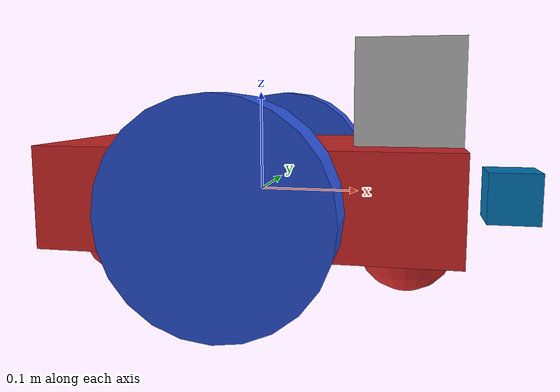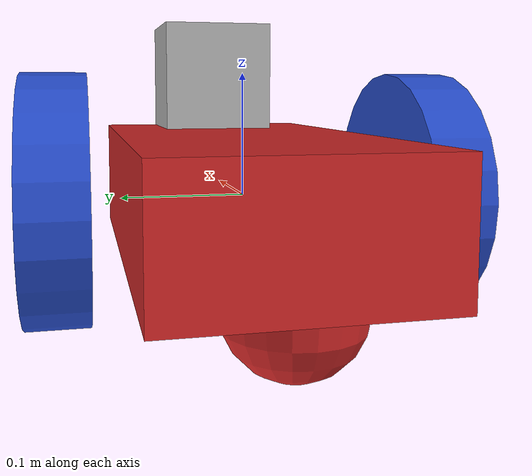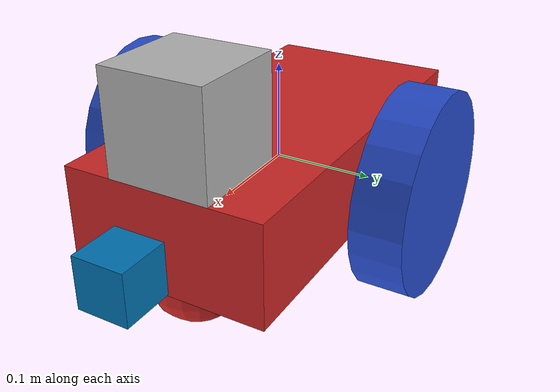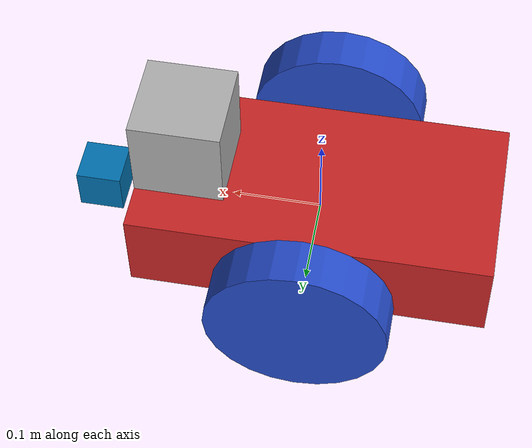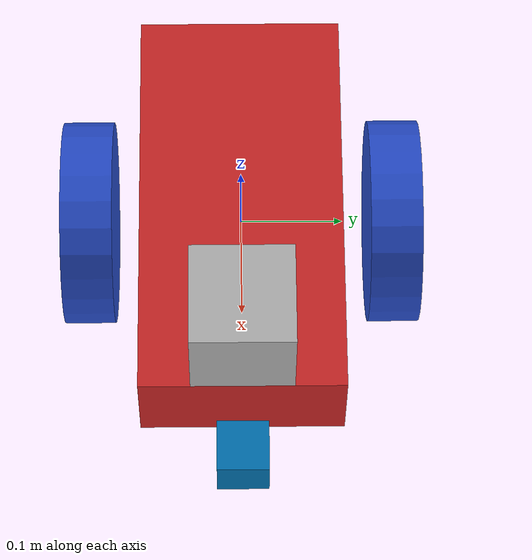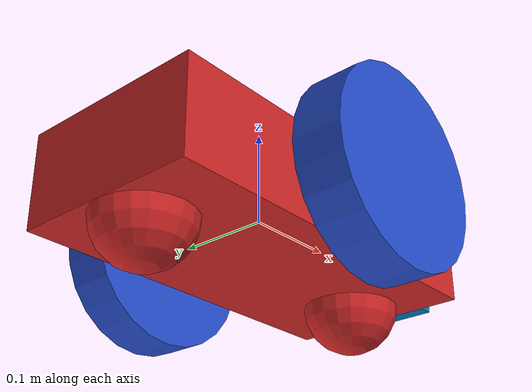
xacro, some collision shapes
<?xml version='1.0'?>

<robot name="my_robot" xmlns:xacro="http://www.ros.org/wiki/xacro">

  <link name="robot_footprint"></link>
  <xacro:include filename="$(find my_robot)/urdf/my_robot.gazebo" />

  <joint name="robot_footprint_joint" type="fixed">
    <origin xyz="0 0 0" rpy="0 0 0" />
    <parent link="robot_footprint"/>
    <child link="chassis" />
  </joint>

  <joint type="continuous" name="left_wheel_hinge">
    <origin xyz="0 0.15 0" rpy="0 0 0"/>
    <child link="left_wheel"/>
    <parent link="chassis"/>
    <axis xyz="0 1 0" rpy="0 0 0"/>
    <limit effort="10000" velocity="1000"/>
    <dynamics damping="1.0" friction="1.0"/>
  </joint>

  <joint type="continuous" name="right_wheel_hinge">
    <origin xyz="0 -0.15 0" rpy="0 0 0"/>
    <child link="right_wheel"/>
    <parent link="chassis"/>
    <axis xyz="0 1 0" rpy="0 0 0"/>
    <limit effort="10000" velocity="1000"/>
    <dynamics damping="1.0" friction="1.0"/>
  </joint>

  <joint type="fixed" name="camera_joint">
    <origin xyz="0.25 0 0" rpy="0 0 0"/>
    <child link="camera"/>
    <parent link="chassis"/>
    <axis xyz="0 1 0" rpy="0 0 0"/>
  </joint>

  <!-- joint camera-depth frame -->
  <joint name="camera_depth_joint" type="fixed">
    <origin xyz="0 0.0 0" rpy="0 0 0" />
    <parent link="camera" />
    <child link="depth_frame" />
  </joint>
  <!-- joint camera-optical frame -->
  <joint name="camera_optical_joint" type="fixed">
    <origin xyz="0 0.0 0" rpy="-1.570796 0 -1.570796" />
    <parent link="camera" />
    <child link="camera_rgb_optical_frame" />
  </joint>

  <joint type="fixed" name="hokuyo_joint">
    <origin xyz="0.15 0 0.1" rpy="0 0 0"/>
    <child link="hokuyo"/>
    <parent link="chassis"/>
    <axis xyz="0 1 0" rpy="0 0 0"/>
  </joint>

  <link name='chassis'>
    <pose>0 0 0.1 0 0 0</pose>

    <inertial>
      <mass value="15.0"/>
      <origin xyz="0.0 0 0" rpy=" 0 0 0"/>
      <inertia
          ixx="0.1" ixy="0" ixz="0"
          iyy="0.1" iyz="0"
          izz="0.1"
      />
    </inertial>

    <collision name='collision'>
      <origin xyz="0 0 0" rpy=" 0 0 0"/>
      <geometry>
        <box size=".4 .2 .1"/>
      </geometry>
    </collision>

    <visual name='chassis_visual'>
      <origin xyz="0 0 0" rpy=" 0 0 0"/>
      <geometry>
        <box size=".4 .2 .1"/>
        <material name="red"/>
      </geometry>
    </visual>

    <collision name='back_caster_collision'>
      <origin xyz="-0.15 0 -0.05" rpy=" 0 0 0"/>
      <geometry>
        <sphere radius="0.0499"/>
      </geometry>
    </collision>

    <visual name='back_caster_visual'>
      <origin xyz="-0.15 0 -0.05" rpy=" 0 0 0"/>
      <geometry>
        <sphere radius="0.05"/>
        <material name="black"/>
      </geometry>
    </visual>

    <collision name='front_caster_collision'>
      <origin xyz="0.15 0 -0.05" rpy=" 0 0 0"/>
      <geometry>
        <sphere radius="0.0499"/>
      </geometry>
    </collision>

    <visual name='front_caster_visual'>
      <origin xyz="0.15 0 -0.05" rpy=" 0 0 0"/>
      <geometry>
        <sphere radius="0.05"/>
        <material name="black"/>
      </geometry>
    </visual>

  </link>

  <gazebo reference="chassis">
    <material>Gazebo/Red</material>
  </gazebo>

  <link name='left_wheel'>
    <inertial>
      <mass value="5.0"/>
      <origin xyz="0 0 0" rpy=" 0 1.5707 1.5707"/>
      <inertia
          ixx="0.1" ixy="0" ixz="0"
          iyy="0.1" iyz="0"
          izz="0.1"
      />
    </inertial>
    <collision name='left_wheel_collision'>
      <origin xyz="0 0 0" rpy=" 0 1.5707 1.5707"/>
      <geometry>
        <cylinder radius="0.1" length="0.05"/>
      </geometry>
    </collision>
    <visual name='left_wheel_visual'>
      <origin xyz="0 0 0" rpy=" 0 1.5707 1.5707"/>
      <geometry>
        <cylinder radius="0.1" length="0.05"/>
        <material name="blue"/>
      </geometry>
    </visual>
  </link>

  <link name='right_wheel'>
    <inertial>
      <mass value="5.0"/>
      <origin xyz="0 0 0" rpy=" 0 1.5707 1.5707"/>
      <inertia
          ixx="0.1" ixy="0" ixz="0"
          iyy="0.1" iyz="0"
          izz="0.1"
      />
    </inertial>
    <collision name='right_wheel_collision'>
      <origin xyz="0 0 0" rpy=" 0 1.5707 1.5707"/>
      <geometry>
        <cylinder radius="0.1" length="0.05"/>
      </geometry>
    </collision>
    <visual name='right_wheel_visual'>
      <origin xyz="0 0 0" rpy=" 0 1.5707 1.5707"/>
      <geometry>
        <cylinder radius="0.1" length="0.05"/>
        <material name="blue"/>
      </geometry>
    </visual>
  </link>

  <gazebo reference="left_wheel">
    <material>Gazebo/Blue</material>
  </gazebo>
  <gazebo reference="right_wheel">
    <material>Gazebo/Blue</material>
  </gazebo>

  <link name='camera'>
    <pose>0 0 0 0 0 0</pose>
    <inertial>
      <mass value="0.1"/>
      <origin xyz="0.0 0 0" rpy=" 0 0 0"/>
      <inertia
          ixx="1e-6" ixy="0" ixz="0"
          iyy="1e-6" iyz="0"
          izz="1e-6"
      />
    </inertial>
    <collision name='camera_collision'>
      <origin xyz="0 0 0" rpy=" 0 0 0"/>
      <geometry>
        <box size=".05 .05 .05"/>
      </geometry>
    </collision>
    <visual name='camera_visual'>
      <origin xyz="0 0 0" rpy=" 0 0 0"/>
      <geometry>
        <box size=".05 .05 .05"/>
      </geometry>
    </visual>
  </link>

  <!-- depth frame -->
  <link name="depth_frame">
    <inertial>
      <mass value="0.0001" />
      <origin xyz="0 0 0" />
      <inertia ixx="0.0001" ixy="0.0" ixz="0.0" iyy="0.0001" iyz="0.0" izz="0.0001" />
    </inertial>
  </link>
  <!-- optical frame -->
  <link name="camera_rgb_optical_frame">
    <inertial>
      <mass value="0.0001" />
      <origin xyz="0 0 0" />
      <inertia ixx="0.0001" ixy="0.0" ixz="0.0" iyy="0.0001" iyz="0.0" izz="0.0001" />
    </inertial>
  </link>

  <link name='hokuyo'>
    <pose>0 0 0 0 0 0</pose>
    <inertial>
      <mass value="1e-5"/>
      <origin xyz="0.0 0 0" rpy=" 0 0 0"/>
      <inertia
          ixx="1e-6" ixy="0" ixz="0"
          iyy="1e-6" iyz="0"
          izz="1e-6"
      />
    </inertial>
    <collision name='hokuyo_collision'>
      <origin xyz="0 0 0" rpy=" 0 0 0"/>
      <geometry>
        <box size=".1 .1 .1"/>
      </geometry>
    </collision>
    <visual name='hokuyo_visual'>
      <origin xyz="0 0 0" rpy=" 0 0 0"/>
      <geometry>
        <mesh filename="package://my_robot/meshes/hokuyo.dae"/>
      </geometry>
    </visual>
  </link>
</robot>
